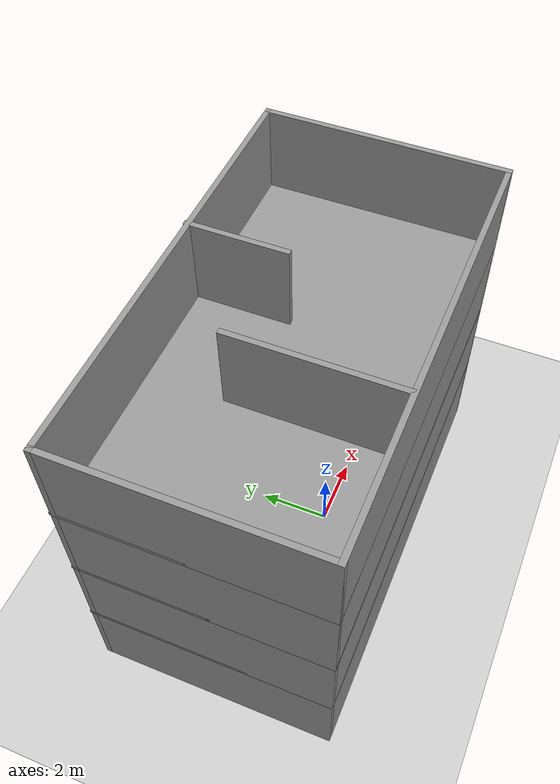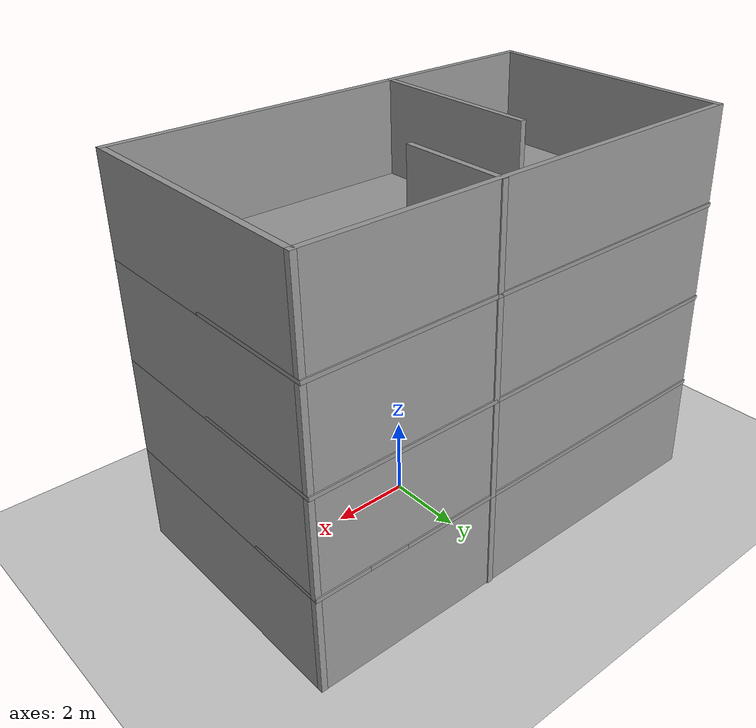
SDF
<sdf version="1.7">
 <world name="default">
  <plugin name="ros_interface_plugin" filename="librotors_gazebo_ros_interface_plugin.so"/>
  <light name="sun" type="directional">
   <pose>0 0 10 0 -0 0</pose>
   <diffuse>0.8 0.8 0.8 1</diffuse>
   <specular>0.2 0.2 0.2 1</specular>
   <attenuation>
    <range>1000</range>
    <constant>0.9</constant>
    <linear>0.01</linear>
    <quadratic>0.001</quadratic>
   </attenuation>
   <direction>-0.5 0.1 -0.9</direction>
   <spot><inner_angle>0</inner_angle><outer_angle>0</outer_angle><falloff>0</falloff></spot>
  </light>
  <model name="ground_plane">
   <static>1</static>
   <link name="link">
    <collision name="collision">
     <geometry><plane><normal>0 0 1</normal><size>100 100</size></plane></geometry>
     <surface><friction><ode><mu>100</mu><mu2>50</mu2></ode></friction></surface>
    </collision>
    <visual name="visual">
     <cast_shadows>0</cast_shadows>
     <geometry><plane><normal>0 0 1</normal><size>100 100</size></plane></geometry>
     <material>
      <script><uri>file://media/materials/scripts/gazebo.material</uri><name>Gazebo/Grey</name></script>
     </material>
    </visual>
   </link>
  </model>
  <gravity>0 0 -9.8</gravity>
  <magnetic_field>6e-06 2.3e-05 -4.2e-05</magnetic_field>
  <atmosphere type="adiabatic"/>
  <physics type="ode">
   <max_step_size>0.001</max_step_size>
   <real_time_factor>1</real_time_factor>
   <real_time_update_rate>1000</real_time_update_rate>
  </physics>
  <scene><ambient>0.4 0.4 0.4 1</ambient><background>0.7 0.7 0.7 1</background><shadows>1</shadows></scene>
  <spherical_coordinates>
   <surface_model>EARTH_WGS84</surface_model>
   <latitude_deg>0</latitude_deg>
   <longitude_deg>0</longitude_deg>
   <elevation>0</elevation>
   <heading_deg>0</heading_deg>
  </spherical_coordinates>
  <model name="world5">
   <pose>-0.400911 0.731959 0 0 -0 0</pose>
   <link name="Floor_0">
    <pose>-0 0 2.5 0 -0 0</pose>
    <visual name="Floor_0_Visual_0">
     <pose>-1.18411 0 0.05 0 -0 0</pose>
     <geometry><box><size>9.63179 6.78498 0.1</size></box></geometry>
     <material>
      <script><uri>file://media/materials/scripts/gazebo.material</uri><name>Gazebo/Grey</name></script>
      <ambient>1 1 1 1</ambient>
     </material>
     <meta><layer>1</layer></meta>
    </visual>
    <collision name="Floor_0_Collision_0">
     <geometry><box><size>9.63179 6.78498 0.1</size></box></geometry>
     <pose>-1.18411 0 0.05 0 -0 0</pose>
    </collision>
    <visual name="Floor_0_Visual_1">
     <pose>4.81589 -2.66151 0.05 0 -0 0</pose>
     <geometry><box><size>2.36821 1.46197 0.1</size></box></geometry>
     <material>
      <script><uri>file://media/materials/scripts/gazebo.material</uri><name>Gazebo/Grey</name></script>
      <ambient>1 1 1 1</ambient>
     </material>
     <meta><layer>1</layer></meta>
    </visual>
    <collision name="Floor_0_Collision_1">
     <geometry><box><size>2.36821 1.46197 0.1</size></box></geometry>
     <pose>4.81589 -2.66151 0.05 0 -0 0</pose>
    </collision>
    <visual name="Floor_0_Visual_2">
     <pose>5.31589 0.730984 0.05 0 -0 0</pose>
     <geometry><box><size>1.36821 5.32301 0.1</size></box></geometry>
     <material>
      <script><uri>file://media/materials/scripts/gazebo.material</uri><name>Gazebo/Grey</name></script>
      <ambient>1 1 1 1</ambient>
     </material>
     <meta><layer>1</layer></meta>
    </visual>
    <collision name="Floor_0_Collision_2">
     <geometry><box><size>1.36821 5.32301 0.1</size></box></geometry>
     <pose>5.31589 0.730984 0.05 0 -0 0</pose>
    </collision>
    <visual name="Floor_0_Visual_3">
     <pose>4.13179 2.48098 0.05 0 -0 0</pose>
     <geometry><box><size>1 1.82301 0.1</size></box></geometry>
     <material>
      <script><uri>file://media/materials/scripts/gazebo.material</uri><name>Gazebo/Grey</name></script>
      <ambient>1 1 1 1</ambient>
     </material>
     <meta><layer>1</layer></meta>
    </visual>
    <collision name="Floor_0_Collision_3">
     <geometry><box><size>1 1.82301 0.1</size></box></geometry>
     <pose>4.13179 2.48098 0.05 0 -0 0</pose>
    </collision>
    <visual name="Floor_0_Visual_4">
     <pose>5.31589 3.39249 0.05 0 -0 0</pose>
     <geometry><box><size>1.36821 0 0.1</size></box></geometry>
     <material>
      <script><uri>file://media/materials/scripts/gazebo.material</uri><name>Gazebo/Grey</name></script>
      <ambient>1 1 1 1</ambient>
     </material>
     <meta><layer>1</layer></meta>
    </visual>
    <collision name="Floor_0_Collision_4">
     <geometry><box><size>1.36821 0 0.1</size></box></geometry>
     <pose>5.31589 3.39249 0.05 0 -0 0</pose>
    </collision>
   </link>
   <link name="Floor_1">
    <collision name="Floor_1_Collision">
     <geometry><box><size>12 6.78498 0.1</size></box></geometry>
     <pose>0 0 0.05 0 -0 0</pose>
    </collision>
    <visual name="Floor_1_Visual">
     <pose>0 0 0.05 0 -0 0</pose>
     <geometry><box><size>12 6.78498 0.1</size></box></geometry>
     <material>
      <script><uri>file://media/materials/scripts/gazebo.material</uri><name>Gazebo/Grey</name></script>
      <ambient>1 1 1 1</ambient>
     </material>
     <meta><layer>2</layer></meta>
    </visual>
    <pose>-0 0 5 0 -0 0</pose>
   </link>
   <link name="Floor_2">
    <collision name="Floor_2_Collision">
     <geometry><box><size>12 6.78498 0.1</size></box></geometry>
     <pose>0 0 0.05 0 -0 0</pose>
    </collision>
    <visual name="Floor_2_Visual">
     <pose>0 0 0.05 0 -0 0</pose>
     <geometry><box><size>12 6.78498 0.1</size></box></geometry>
     <material>
      <script><uri>file://media/materials/scripts/gazebo.material</uri><name>Gazebo/Grey</name></script>
      <ambient>1 1 1 1</ambient>
     </material>
     <meta><layer>3</layer></meta>
    </visual>
    <pose>-0 0 7.5 0 -0 0</pose>
   </link>
   <link name="Stairs_1">
    <visual name="Stairs_1_Visual_0">
     <pose>4.13179 1.45281 0.083333 0 -0 0</pose>
     <geometry><box><size>1 0.233333 0.166667</size></box></geometry>
     <material>
      <script><uri>file://media/materials/scripts/gazebo.material</uri><name>Gazebo/Grey</name></script>
      <ambient>1 1 1 1</ambient>
     </material>
     <meta><layer>0</layer></meta>
    </visual>
    <collision name="Stairs_1_Collision_0">
     <geometry><box><size>1 0.233333 0.166667</size></box></geometry>
     <pose>4.13179 1.45281 0.083333 0 -0 0</pose>
    </collision>
    <visual name="Stairs_1_Visual_1">
     <pose>4.13179 1.21948 0.25 0 -0 0</pose>
     <geometry><box><size>1 0.233333 0.166667</size></box></geometry>
     <material>
      <script><uri>file://media/materials/scripts/gazebo.material</uri><name>Gazebo/Grey</name></script>
      <ambient>1 1 1 1</ambient>
     </material>
     <meta><layer>0</layer></meta>
    </visual>
    <collision name="Stairs_1_Collision_1">
     <geometry><box><size>1 0.233333 0.166667</size></box></geometry>
     <pose>4.13179 1.21948 0.25 0 -0 0</pose>
    </collision>
    <visual name="Stairs_1_Visual_2">
     <pose>4.13179 0.986145 0.416667 0 -0 0</pose>
     <geometry><box><size>1 0.233333 0.166667</size></box></geometry>
     <material>
      <script><uri>file://media/materials/scripts/gazebo.material</uri><name>Gazebo/Grey</name></script>
      <ambient>1 1 1 1</ambient>
     </material>
     <meta><layer>0</layer></meta>
    </visual>
    <collision name="Stairs_1_Collision_2">
     <geometry><box><size>1 0.233333 0.166667</size></box></geometry>
     <pose>4.13179 0.986145 0.416667 0 -0 0</pose>
    </collision>
    <visual name="Stairs_1_Visual_3">
     <pose>4.13179 0.752811 0.583333 0 -0 0</pose>
     <geometry><box><size>1 0.233333 0.166667</size></box></geometry>
     <material>
      <script><uri>file://media/materials/scripts/gazebo.material</uri><name>Gazebo/Grey</name></script>
      <ambient>1 1 1 1</ambient>
     </material>
     <meta><layer>0</layer></meta>
    </visual>
    <collision name="Stairs_1_Collision_3">
     <geometry><box><size>1 0.233333 0.166667</size></box></geometry>
     <pose>4.13179 0.752811 0.583333 0 -0 0</pose>
    </collision>
    <visual name="Stairs_1_Visual_4">
     <pose>4.13179 0.519478 0.75 0 -0 0</pose>
     <geometry><box><size>1 0.233333 0.166667</size></box></geometry>
     <material>
      <script><uri>file://media/materials/scripts/gazebo.material</uri><name>Gazebo/Grey</name></script>
      <ambient>1 1 1 1</ambient>
     </material>
     <meta><layer>0</layer></meta>
    </visual>
    <collision name="Stairs_1_Collision_4">
     <geometry><box><size>1 0.233333 0.166667</size></box></geometry>
     <pose>4.13179 0.519478 0.75 0 -0 0</pose>
    </collision>
    <visual name="Stairs_1_Visual_5">
     <pose>4.13179 0.286144 0.916667 0 -0 0</pose>
     <geometry><box><size>1 0.233333 0.166667</size></box></geometry>
     <material>
      <script><uri>file://media/materials/scripts/gazebo.material</uri><name>Gazebo/Grey</name></script>
      <ambient>1 1 1 1</ambient>
     </material>
     <meta><layer>0</layer></meta>
    </visual>
    <collision name="Stairs_1_Collision_5">
     <geometry><box><size>1 0.233333 0.166667</size></box></geometry>
     <pose>4.13179 0.286144 0.916667 0 -0 0</pose>
    </collision>
    <visual name="Stairs_1_Visual_6">
     <pose>4.13179 0.052811 1.08333 0 -0 0</pose>
     <geometry><box><size>1 0.233333 0.166667</size></box></geometry>
     <material>
      <script><uri>file://media/materials/scripts/gazebo.material</uri><name>Gazebo/Grey</name></script>
      <ambient>1 1 1 1</ambient>
     </material>
     <meta><layer>0</layer></meta>
    </visual>
    <collision name="Stairs_1_Collision_6">
     <geometry><box><size>1 0.233333 0.166667</size></box></geometry>
     <pose>4.13179 0.052811 1.08333 0 -0 0</pose>
    </collision>
    <visual name="Stairs_1_Visual_7">
     <pose>4.13179 -0.180522 1.25 0 -0 0</pose>
     <geometry><box><size>1 0.233333 0.166667</size></box></geometry>
     <material>
      <script><uri>file://media/materials/scripts/gazebo.material</uri><name>Gazebo/Grey</name></script>
      <ambient>1 1 1 1</ambient>
     </material>
     <meta><layer>0</layer></meta>
    </visual>
    <collision name="Stairs_1_Collision_7">
     <geometry><box><size>1 0.233333 0.166667</size></box></geometry>
     <pose>4.13179 -0.180522 1.25 0 -0 0</pose>
    </collision>
    <visual name="Stairs_1_Visual_8">
     <pose>4.13179 -0.413856 1.41667 0 -0 0</pose>
     <geometry><box><size>1 0.233333 0.166667</size></box></geometry>
     <material>
      <script><uri>file://media/materials/scripts/gazebo.material</uri><name>Gazebo/Grey</name></script>
      <ambient>1 1 1 1</ambient>
     </material>
     <meta><layer>0</layer></meta>
    </visual>
    <collision name="Stairs_1_Collision_8">
     <geometry><box><size>1 0.233333 0.166667</size></box></geometry>
     <pose>4.13179 -0.413856 1.41667 0 -0 0</pose>
    </collision>
    <visual name="Stairs_1_Visual_9">
     <pose>4.13179 -0.647189 1.58333 0 -0 0</pose>
     <geometry><box><size>1 0.233333 0.166667</size></box></geometry>
     <material>
      <script><uri>file://media/materials/scripts/gazebo.material</uri><name>Gazebo/Grey</name></script>
      <ambient>1 1 1 1</ambient>
     </material>
     <meta><layer>0</layer></meta>
    </visual>
    <collision name="Stairs_1_Collision_9">
     <geometry><box><size>1 0.233333 0.166667</size></box></geometry>
     <pose>4.13179 -0.647189 1.58333 0 -0 0</pose>
    </collision>
    <visual name="Stairs_1_Visual_10">
     <pose>4.13179 -0.880522 1.75 0 -0 0</pose>
     <geometry><box><size>1 0.233333 0.166667</size></box></geometry>
     <material>
      <script><uri>file://media/materials/scripts/gazebo.material</uri><name>Gazebo/Grey</name></script>
      <ambient>1 1 1 1</ambient>
     </material>
     <meta><layer>0</layer></meta>
    </visual>
    <collision name="Stairs_1_Collision_10">
     <geometry><box><size>1 0.233333 0.166667</size></box></geometry>
     <pose>4.13179 -0.880522 1.75 0 -0 0</pose>
    </collision>
    <visual name="Stairs_1_Visual_11">
     <pose>4.13179 -1.11386 1.91667 0 -0 0</pose>
     <geometry><box><size>1 0.233333 0.166667</size></box></geometry>
     <material>
      <script><uri>file://media/materials/scripts/gazebo.material</uri><name>Gazebo/Grey</name></script>
      <ambient>1 1 1 1</ambient>
     </material>
     <meta><layer>0</layer></meta>
    </visual>
    <collision name="Stairs_1_Collision_11">
     <geometry><box><size>1 0.233333 0.166667</size></box></geometry>
     <pose>4.13179 -1.11386 1.91667 0 -0 0</pose>
    </collision>
    <visual name="Stairs_1_Visual_12">
     <pose>4.13179 -1.34719 2.08333 0 -0 0</pose>
     <geometry><box><size>1 0.233333 0.166667</size></box></geometry>
     <material>
      <script><uri>file://media/materials/scripts/gazebo.material</uri><name>Gazebo/Grey</name></script>
      <ambient>1 1 1 1</ambient>
     </material>
     <meta><layer>0</layer></meta>
    </visual>
    <collision name="Stairs_1_Collision_12">
     <geometry><box><size>1 0.233333 0.166667</size></box></geometry>
     <pose>4.13179 -1.34719 2.08333 0 -0 0</pose>
    </collision>
    <visual name="Stairs_1_Visual_13">
     <pose>4.13179 -1.58052 2.25 0 -0 0</pose>
     <geometry><box><size>1 0.233333 0.166667</size></box></geometry>
     <material>
      <script><uri>file://media/materials/scripts/gazebo.material</uri><name>Gazebo/Grey</name></script>
      <ambient>1 1 1 1</ambient>
     </material>
     <meta><layer>0</layer></meta>
    </visual>
    <collision name="Stairs_1_Collision_13">
     <geometry><box><size>1 0.233333 0.166667</size></box></geometry>
     <pose>4.13179 -1.58052 2.25 0 -0 0</pose>
    </collision>
    <visual name="Stairs_1_Visual_14">
     <pose>4.13179 -1.81386 2.41667 0 -0 0</pose>
     <geometry><box><size>1 0.233333 0.166667</size></box></geometry>
     <material>
      <script><uri>file://media/materials/scripts/gazebo.material</uri><name>Gazebo/Grey</name></script>
      <ambient>1 1 1 1</ambient>
     </material>
     <meta><layer>0</layer></meta>
    </visual>
    <collision name="Stairs_1_Collision_14">
     <geometry><box><size>1 0.233333 0.166667</size></box></geometry>
     <pose>4.13179 -1.81386 2.41667 0 -0 0</pose>
    </collision>
   </link>
   <link name="Wall_10">
    <collision name="Wall_10_Collision">
     <geometry><box><size>2.75 0.15 2.5</size></box></geometry>
     <pose>0 0 1.25 0 -0 0</pose>
    </collision>
    <visual name="Wall_10_Visual">
     <pose>0 0 1.25 0 -0 0</pose>
     <geometry><box><size>2.75 0.15 2.5</size></box></geometry>
     <material>
      <script><uri>file://media/materials/scripts/gazebo.material</uri><name>Gazebo/Grey</name></script>
      <ambient>1 1 1 1</ambient>
     </material>
     <meta><layer>0</layer></meta>
    </visual>
    <pose>1.14098 2.01749 0 0 -0 -1.5708</pose>
   </link>
   <link name="Wall_12">
    <collision name="Wall_12_Collision">
     <geometry><box><size>4.5 0.15 2.5</size></box></geometry>
     <pose>0 0 1.25 0 -0 0</pose>
    </collision>
    <visual name="Wall_12_Visual">
     <pose>0 0 1.25 0 -0 0</pose>
     <geometry><box><size>4.5 0.15 2.5</size></box></geometry>
     <material>
      <script><uri>file://media/materials/scripts/gazebo.material</uri><name>Gazebo/Grey</name></script>
      <ambient>1 1 1 1</ambient>
     </material>
     <meta><layer>0</layer></meta>
    </visual>
    <pose>-1.6924 -1.07875 0 0 -0 -1.5708</pose>
   </link>
   <link name="Wall_14">
    <collision name="Wall_14_Collision">
     <geometry><box><size>6.75 0.15 2.5</size></box></geometry>
     <pose>0 0 1.25 0 -0 0</pose>
    </collision>
    <visual name="Wall_14_Visual">
     <pose>0 0 1.25 0 -0 0</pose>
     <geometry><box><size>6.75 0.15 2.5</size></box></geometry>
     <material>
      <script><uri>file://media/materials/scripts/gazebo.material</uri><name>Gazebo/Grey</name></script>
      <ambient>1 1 1 1</ambient>
     </material>
     <meta><layer>1</layer></meta>
    </visual>
    <pose>-5.925 -0.01749 2.5 0 -0 -1.5708</pose>
   </link>
   <link name="Wall_15">
    <collision name="Wall_15_Collision">
     <geometry><box><size>12 0.15 2.5</size></box></geometry>
     <pose>0 0 1.25 0 -0 0</pose>
    </collision>
    <visual name="Wall_15_Visual">
     <pose>0 0 1.25 0 -0 0</pose>
     <geometry><box><size>12 0.15 2.5</size></box></geometry>
     <material>
      <script><uri>file://media/materials/scripts/gazebo.material</uri><name>Gazebo/Grey</name></script>
      <ambient>1 1 1 1</ambient>
     </material>
     <meta><layer>1</layer></meta>
    </visual>
    <pose>-0 -3.31749 2.5 0 -0 0</pose>
   </link>
   <link name="Wall_16">
    <collision name="Wall_16_Collision">
     <geometry><box><size>6.75 0.15 2.5</size></box></geometry>
     <pose>0 0 1.25 0 -0 0</pose>
    </collision>
    <visual name="Wall_16_Visual">
     <pose>0 0 1.25 0 -0 0</pose>
     <geometry><box><size>6.75 0.15 2.5</size></box></geometry>
     <material>
      <script><uri>file://media/materials/scripts/gazebo.material</uri><name>Gazebo/Grey</name></script>
      <ambient>1 1 1 1</ambient>
     </material>
     <meta><layer>1</layer></meta>
    </visual>
    <pose>5.925 -0.01749 2.5 0 -0 1.5708</pose>
   </link>
   <link name="Wall_17">
    <collision name="Wall_17_Collision">
     <geometry><box><size>12 0.15 2.5</size></box></geometry>
     <pose>0 0 1.25 0 -0 0</pose>
    </collision>
    <visual name="Wall_17_Visual">
     <pose>0 0 1.25 0 -0 0</pose>
     <geometry><box><size>12 0.15 2.5</size></box></geometry>
     <material>
      <script><uri>file://media/materials/scripts/gazebo.material</uri><name>Gazebo/Grey</name></script>
      <ambient>1 1 1 1</ambient>
     </material>
     <meta><layer>1</layer></meta>
    </visual>
    <pose>-0 3.28251 2.5 0 -0 3.14159</pose>
   </link>
   <link name="Wall_18">
    <collision name="Wall_18_Collision">
     <geometry><box><size>2.75 0.15 2.5</size></box></geometry>
     <pose>0 0 1.25 0 -0 0</pose>
    </collision>
    <visual name="Wall_18_Visual">
     <pose>0 0 1.25 0 -0 0</pose>
     <geometry><box><size>2.75 0.15 2.5</size></box></geometry>
     <material>
      <script><uri>file://media/materials/scripts/gazebo.material</uri><name>Gazebo/Grey</name></script>
      <ambient>1 1 1 1</ambient>
     </material>
     <meta><layer>1</layer></meta>
    </visual>
    <pose>1.14098 2.01749 2.5 0 -0 -1.5708</pose>
   </link>
   <link name="Wall_19">
    <collision name="Wall_19_Collision">
     <geometry><box><size>4.5 0.15 2.5</size></box></geometry>
     <pose>0 0 1.25 0 -0 0</pose>
    </collision>
    <visual name="Wall_19_Visual">
     <pose>0 0 1.25 0 -0 0</pose>
     <geometry><box><size>4.5 0.15 2.5</size></box></geometry>
     <material>
      <script><uri>file://media/materials/scripts/gazebo.material</uri><name>Gazebo/Grey</name></script>
      <ambient>1 1 1 1</ambient>
     </material>
     <meta><layer>1</layer></meta>
    </visual>
    <pose>-1.6924 -1.07875 2.5 0 -0 -1.5708</pose>
   </link>
   <link name="Wall_20">
    <collision name="Wall_20_Collision">
     <geometry><box><size>6.75 0.15 2.5</size></box></geometry>
     <pose>0 0 1.25 0 -0 0</pose>
    </collision>
    <visual name="Wall_20_Visual">
     <pose>0 0 1.25 0 -0 0</pose>
     <geometry><box><size>6.75 0.15 2.5</size></box></geometry>
     <material>
      <script><uri>file://media/materials/scripts/gazebo.material</uri><name>Gazebo/Grey</name></script>
      <ambient>1 1 1 1</ambient>
     </material>
     <meta><layer>2</layer></meta>
    </visual>
    <pose>-5.925 -0.01749 5 0 -0 -1.5708</pose>
   </link>
   <link name="Wall_21">
    <collision name="Wall_21_Collision">
     <geometry><box><size>12 0.15 2.5</size></box></geometry>
     <pose>0 0 1.25 0 -0 0</pose>
    </collision>
    <visual name="Wall_21_Visual">
     <pose>0 0 1.25 0 -0 0</pose>
     <geometry><box><size>12 0.15 2.5</size></box></geometry>
     <material>
      <script><uri>file://media/materials/scripts/gazebo.material</uri><name>Gazebo/Grey</name></script>
      <ambient>1 1 1 1</ambient>
     </material>
     <meta><layer>2</layer></meta>
    </visual>
    <pose>-0 -3.31749 5 0 -0 0</pose>
   </link>
   <link name="Wall_22">
    <collision name="Wall_22_Collision">
     <geometry><box><size>6.75 0.15 2.5</size></box></geometry>
     <pose>0 0 1.25 0 -0 0</pose>
    </collision>
    <visual name="Wall_22_Visual">
     <pose>0 0 1.25 0 -0 0</pose>
     <geometry><box><size>6.75 0.15 2.5</size></box></geometry>
     <material>
      <script><uri>file://media/materials/scripts/gazebo.material</uri><name>Gazebo/Grey</name></script>
      <ambient>1 1 1 1</ambient>
     </material>
     <meta><layer>2</layer></meta>
    </visual>
    <pose>5.925 -0.01749 5 0 -0 1.5708</pose>
   </link>
   <link name="Wall_23">
    <collision name="Wall_23_Collision">
     <geometry><box><size>12 0.15 2.5</size></box></geometry>
     <pose>0 0 1.25 0 -0 0</pose>
    </collision>
    <visual name="Wall_23_Visual">
     <pose>0 0 1.25 0 -0 0</pose>
     <geometry><box><size>12 0.15 2.5</size></box></geometry>
     <material>
      <script><uri>file://media/materials/scripts/gazebo.material</uri><name>Gazebo/Grey</name></script>
      <ambient>1 1 1 1</ambient>
     </material>
     <meta><layer>2</layer></meta>
    </visual>
    <pose>-0 3.28251 5 0 -0 3.14159</pose>
   </link>
   <link name="Wall_24">
    <collision name="Wall_24_Collision">
     <geometry><box><size>2.75 0.15 2.5</size></box></geometry>
     <pose>0 0 1.25 0 -0 0</pose>
    </collision>
    <visual name="Wall_24_Visual">
     <pose>0 0 1.25 0 -0 0</pose>
     <geometry><box><size>2.75 0.15 2.5</size></box></geometry>
     <material>
      <script><uri>file://media/materials/scripts/gazebo.material</uri><name>Gazebo/Grey</name></script>
      <ambient>1 1 1 1</ambient>
     </material>
     <meta><layer>2</layer></meta>
    </visual>
    <pose>1.14098 2.01749 5 0 -0 -1.5708</pose>
   </link>
   <link name="Wall_25">
    <collision name="Wall_25_Collision">
     <geometry><box><size>4.5 0.15 2.5</size></box></geometry>
     <pose>0 0 1.25 0 -0 0</pose>
    </collision>
    <visual name="Wall_25_Visual">
     <pose>0 0 1.25 0 -0 0</pose>
     <geometry><box><size>4.5 0.15 2.5</size></box></geometry>
     <material>
      <script><uri>file://media/materials/scripts/gazebo.material</uri><name>Gazebo/Grey</name></script>
      <ambient>1 1 1 1</ambient>
     </material>
     <meta><layer>2</layer></meta>
    </visual>
    <pose>-1.6924 -1.07875 5 0 -0 -1.5708</pose>
   </link>
   <link name="Wall_26">
    <collision name="Wall_26_Collision">
     <geometry><box><size>6.75 0.15 2.5</size></box></geometry>
     <pose>0 0 1.25 0 -0 0</pose>
    </collision>
    <visual name="Wall_26_Visual">
     <pose>0 0 1.25 0 -0 0</pose>
     <geometry><box><size>6.75 0.15 2.5</size></box></geometry>
     <material>
      <script><uri>file://media/materials/scripts/gazebo.material</uri><name>Gazebo/Grey</name></script>
      <ambient>1 1 1 1</ambient>
     </material>
     <meta><layer>3</layer></meta>
    </visual>
    <pose>-5.925 -0.01749 7.5 0 -0 -1.5708</pose>
   </link>
   <link name="Wall_27">
    <collision name="Wall_27_Collision">
     <geometry><box><size>12 0.15 2.5</size></box></geometry>
     <pose>0 0 1.25 0 -0 0</pose>
    </collision>
    <visual name="Wall_27_Visual">
     <pose>0 0 1.25 0 -0 0</pose>
     <geometry><box><size>12 0.15 2.5</size></box></geometry>
     <material>
      <script><uri>file://media/materials/scripts/gazebo.material</uri><name>Gazebo/Grey</name></script>
      <ambient>1 1 1 1</ambient>
     </material>
     <meta><layer>3</layer></meta>
    </visual>
    <pose>-0 -3.31749 7.5 0 -0 0</pose>
   </link>
   <link name="Wall_28">
    <collision name="Wall_28_Collision">
     <geometry><box><size>6.75 0.15 2.5</size></box></geometry>
     <pose>0 0 1.25 0 -0 0</pose>
    </collision>
    <visual name="Wall_28_Visual">
     <pose>0 0 1.25 0 -0 0</pose>
     <geometry><box><size>6.75 0.15 2.5</size></box></geometry>
     <material>
      <script><uri>file://media/materials/scripts/gazebo.material</uri><name>Gazebo/Grey</name></script>
      <ambient>1 1 1 1</ambient>
     </material>
     <meta><layer>3</layer></meta>
    </visual>
    <pose>5.925 -0.01749 7.5 0 -0 1.5708</pose>
   </link>
   <link name="Wall_29">
    <collision name="Wall_29_Collision">
     <geometry><box><size>12 0.15 2.5</size></box></geometry>
     <pose>0 0 1.25 0 -0 0</pose>
    </collision>
    <visual name="Wall_29_Visual">
     <pose>0 0 1.25 0 -0 0</pose>
     <geometry><box><size>12 0.15 2.5</size></box></geometry>
     <material>
      <script><uri>file://media/materials/scripts/gazebo.material</uri><name>Gazebo/Grey</name></script>
      <ambient>1 1 1 1</ambient>
     </material>
     <meta><layer>3</layer></meta>
    </visual>
    <pose>-0 3.28251 7.5 0 -0 3.14159</pose>
   </link>
   <link name="Wall_30">
    <collision name="Wall_30_Collision">
     <geometry><box><size>2.75 0.15 2.5</size></box></geometry>
     <pose>0 0 1.25 0 -0 0</pose>
    </collision>
    <visual name="Wall_30_Visual">
     <pose>0 0 1.25 0 -0 0</pose>
     <geometry><box><size>2.75 0.15 2.5</size></box></geometry>
     <material>
      <script><uri>file://media/materials/scripts/gazebo.material</uri><name>Gazebo/Grey</name></script>
      <ambient>1 1 1 1</ambient>
     </material>
     <meta><layer>3</layer></meta>
    </visual>
    <pose>1.14098 2.01749 7.5 0 -0 -1.5708</pose>
   </link>
   <link name="Wall_31">
    <collision name="Wall_31_Collision">
     <geometry><box><size>4.5 0.15 2.5</size></box></geometry>
     <pose>0 0 1.25 0 -0 0</pose>
    </collision>
    <visual name="Wall_31_Visual">
     <pose>0 0 1.25 0 -0 0</pose>
     <geometry><box><size>4.5 0.15 2.5</size></box></geometry>
     <material>
      <script><uri>file://media/materials/scripts/gazebo.material</uri><name>Gazebo/Grey</name></script>
      <ambient>1 1 1 1</ambient>
     </material>
     <meta><layer>3</layer></meta>
    </visual>
    <pose>-1.6924 -1.07875 7.5 0 -0 -1.5708</pose>
   </link>
   <link name="Wall_5">
    <collision name="Wall_5_Collision">
     <geometry><box><size>6.75 0.15 2.5</size></box></geometry>
     <pose>0 0 1.25 0 -0 0</pose>
    </collision>
    <visual name="Wall_5_Visual">
     <pose>0 0 1.25 0 -0 0</pose>
     <geometry><box><size>6.75 0.15 2.5</size></box></geometry>
     <material>
      <script><uri>file://media/materials/scripts/gazebo.material</uri><name>Gazebo/Grey</name></script>
      <ambient>1 1 1 1</ambient>
     </material>
     <meta><layer>0</layer></meta>
    </visual>
    <pose>-5.925 -0.01749 0 0 -0 -1.5708</pose>
   </link>
   <link name="Wall_6">
    <collision name="Wall_6_Collision">
     <geometry><box><size>12 0.15 2.5</size></box></geometry>
     <pose>0 0 1.25 0 -0 0</pose>
    </collision>
    <visual name="Wall_6_Visual">
     <pose>0 0 1.25 0 -0 0</pose>
     <geometry><box><size>12 0.15 2.5</size></box></geometry>
     <material>
      <script><uri>file://media/materials/scripts/gazebo.material</uri><name>Gazebo/Grey</name></script>
      <ambient>1 1 1 1</ambient>
     </material>
     <meta><layer>0</layer></meta>
    </visual>
    <pose>-0 -3.31749 0 0 -0 0</pose>
   </link>
   <link name="Wall_7">
    <collision name="Wall_7_Collision">
     <geometry><box><size>6.75 0.15 2.5</size></box></geometry>
     <pose>0 0 1.25 0 -0 0</pose>
    </collision>
    <visual name="Wall_7_Visual">
     <pose>0 0 1.25 0 -0 0</pose>
     <geometry><box><size>6.75 0.15 2.5</size></box></geometry>
     <material>
      <script><uri>file://media/materials/scripts/gazebo.material</uri><name>Gazebo/Grey</name></script>
      <ambient>1 1 1 1</ambient>
     </material>
     <meta><layer>0</layer></meta>
    </visual>
    <pose>5.925 -0.01749 0 0 -0 1.5708</pose>
   </link>
   <link name="Wall_8">
    <collision name="Wall_8_Collision">
     <geometry><box><size>12 0.15 2.5</size></box></geometry>
     <pose>0 0 1.25 0 -0 0</pose>
    </collision>
    <visual name="Wall_8_Visual">
     <pose>0 0 1.25 0 -0 0</pose>
     <geometry><box><size>12 0.15 2.5</size></box></geometry>
     <material>
      <script><uri>file://media/materials/scripts/gazebo.material</uri><name>Gazebo/Grey</name></script>
      <ambient>1 1 1 1</ambient>
     </material>
     <meta><layer>0</layer></meta>
    </visual>
    <pose>-0 3.28251 0 0 -0 3.14159</pose>
   </link>
   <static>1</static>
  </model>
 </world>
</sdf>
